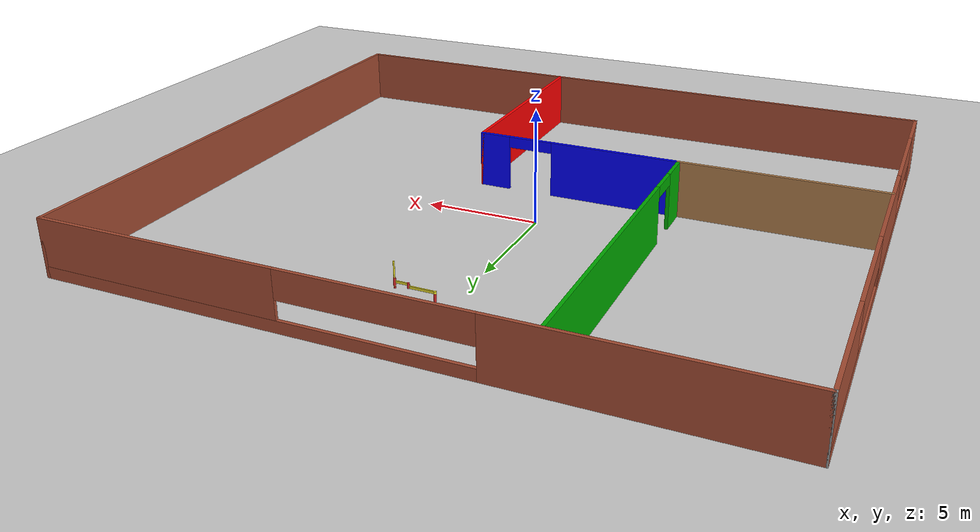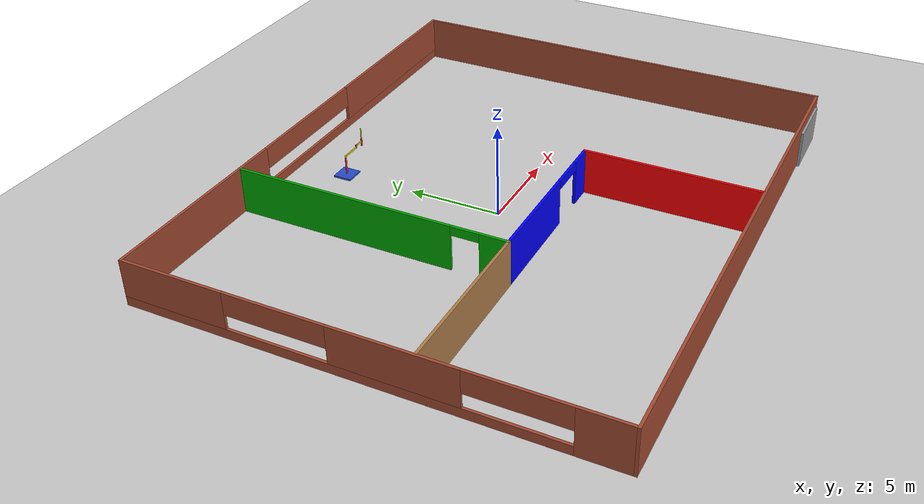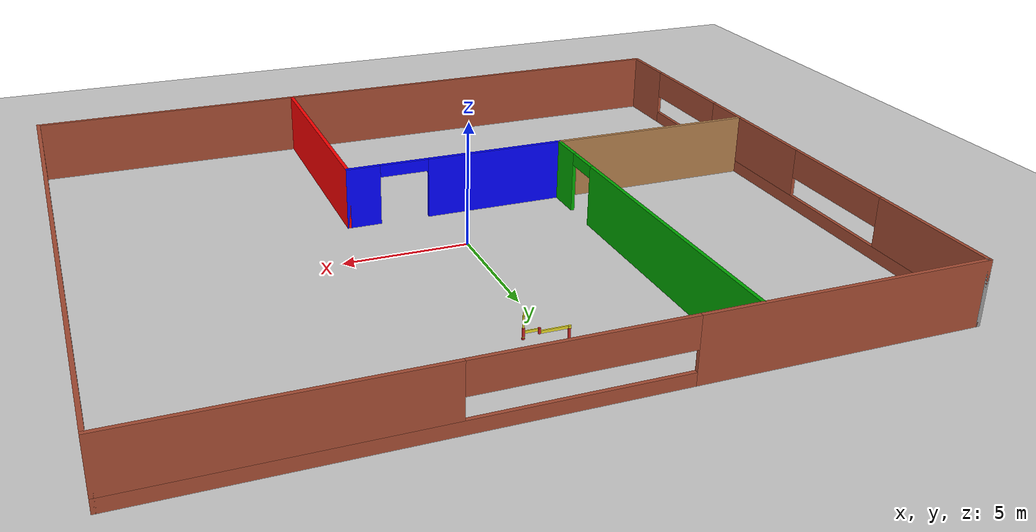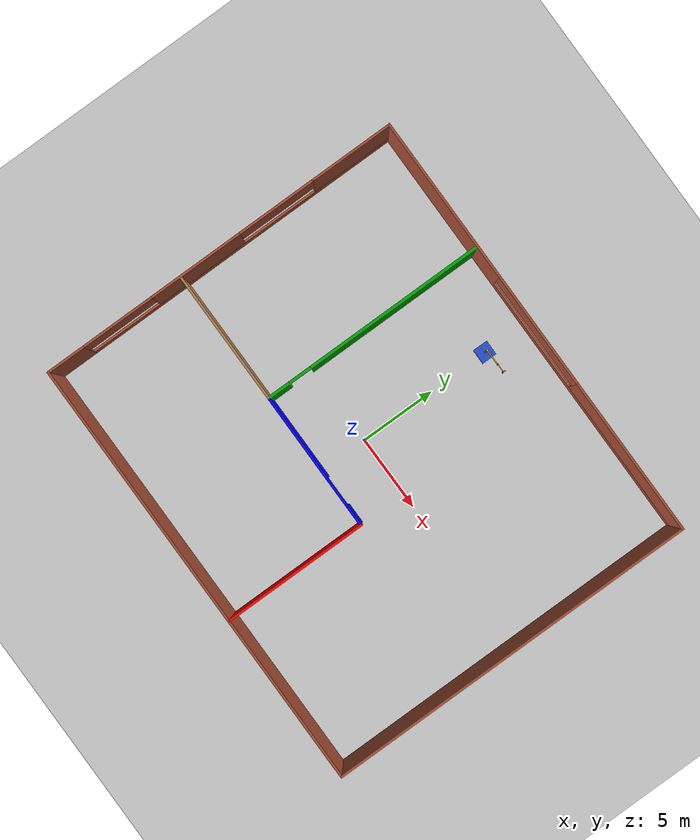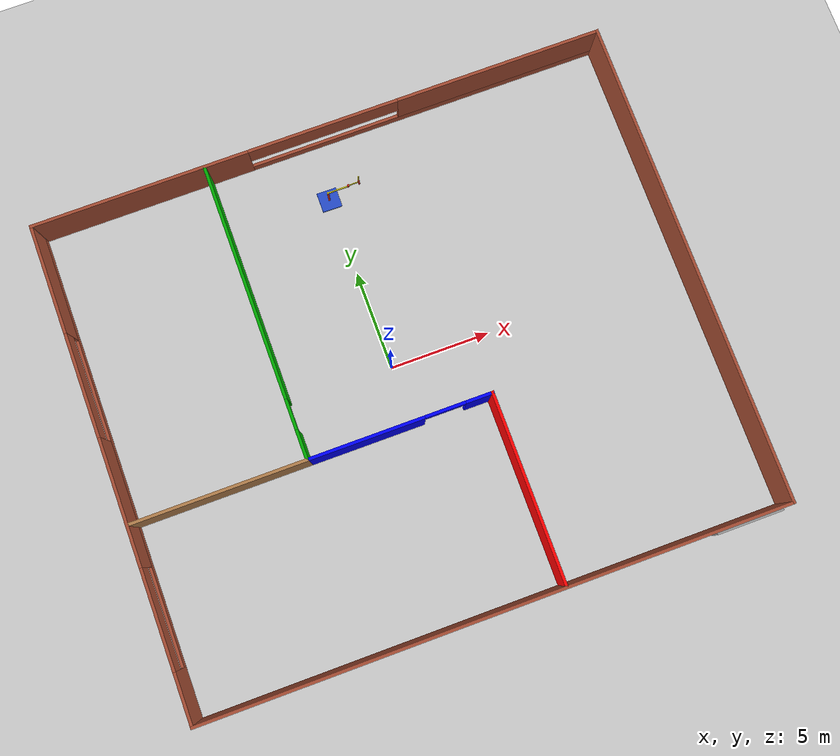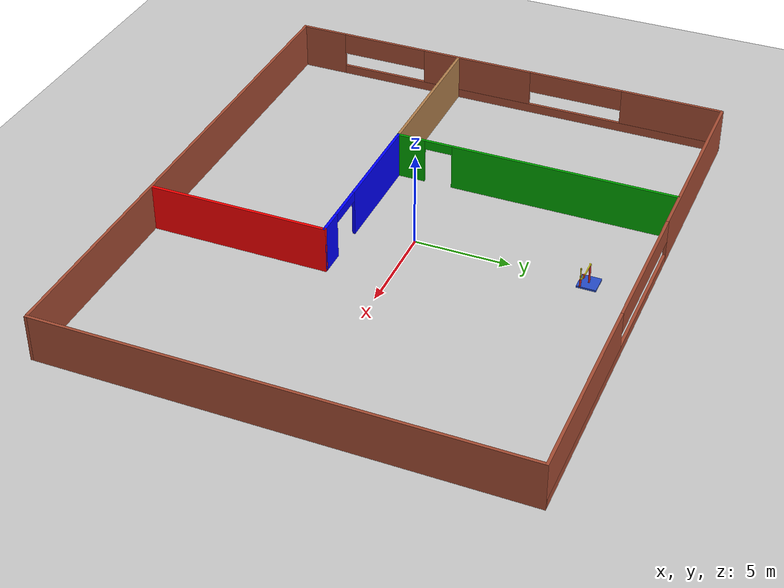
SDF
<sdf version="1.6">
 <world name="default">
  <model name="ground_plane">
   <static>1</static>
   <link name="link">
    <collision name="collision">
     <geometry><plane><normal>0 0 1</normal><size>100 100</size></plane></geometry>
     <surface><friction><ode><mu>100</mu><mu2>50</mu2></ode></friction></surface>
    </collision>
    <visual name="visual">
     <cast_shadows>0</cast_shadows>
     <geometry><plane><normal>0 0 1</normal><size>100 100</size></plane></geometry>
     <material>
      <script><uri>file://media/materials/scripts/gazebo.material</uri><name>Gazebo/Grey</name></script>
     </material>
    </visual>
   </link>
  </model>
  <model name="arpeggio_apartment">
   <pose>0.559 -0.3298 0 0 -0 0</pose>
   <link name="Door_0">
    <collision name="Door_0_Collision">
     <geometry><box><size>3.30558 0.2 2</size></box></geometry>
     <pose>0 0 1 0 -0 0</pose>
    </collision>
    <visual name="Door_0_Visual">
     <pose>0 0 1 0 -0 0</pose>
     <geometry><box><size>3.30558 0.2 2</size></box></geometry>
     <material>
      <script><uri>file://media/materials/scripts/gazebo.material</uri><name>Gazebo/Grey</name></script>
     </material>
    </visual>
    <pose>12.3774 -12.2816 0 0 -0 0</pose>
   </link>
   <link name="Wall_0">
    <pose>0 12.175 0 0 -0 0</pose>
    <visual name="Wall_0_Visual_0">
     <pose>-9.03319 0 1.25 0 -0 0</pose>
     <geometry><box><size>10.9336 0.15 2.5</size></box></geometry>
     <material>
      <script><uri>file://media/materials/scripts/gazebo.material</uri><name>Gazebo/Bricks</name></script>
      <ambient>1 1 1 1</ambient>
     </material>
     <meta><layer>0</layer></meta>
    </visual>
    <collision name="Wall_0_Collision_0">
     <geometry><box><size>10.9336 0.15 2.5</size></box></geometry>
     <pose>-9.03319 0 1.25 0 -0 0</pose>
    </collision>
    <visual name="Wall_0_Visual_1">
     <pose>5.46681 0 0.25 0 -0 0</pose>
     <geometry><box><size>18.0664 0.15 0.5</size></box></geometry>
     <material>
      <script><uri>file://media/materials/scripts/gazebo.material</uri><name>Gazebo/Bricks</name></script>
      <ambient>1 1 1 1</ambient>
     </material>
     <meta><layer>0</layer></meta>
    </visual>
    <collision name="Wall_0_Collision_1">
     <geometry><box><size>18.0664 0.15 0.5</size></box></geometry>
     <pose>5.46681 0 0.25 0 -0 0</pose>
    </collision>
    <visual name="Wall_0_Visual_2">
     <pose>9.27494 0 1.5 0 -0 0</pose>
     <geometry><box><size>10.4501 0.15 2</size></box></geometry>
     <material>
      <script><uri>file://media/materials/scripts/gazebo.material</uri><name>Gazebo/Bricks</name></script>
      <ambient>1 1 1 1</ambient>
     </material>
     <meta><layer>0</layer></meta>
    </visual>
    <collision name="Wall_0_Collision_2">
     <geometry><box><size>10.4501 0.15 2</size></box></geometry>
     <pose>9.27494 0 1.5 0 -0 0</pose>
    </collision>
    <visual name="Wall_0_Visual_3">
     <pose>0.241756 0 1.9 0 -0 0</pose>
     <geometry><box><size>7.61627 0.15 1.2</size></box></geometry>
     <material>
      <script><uri>file://media/materials/scripts/gazebo.material</uri><name>Gazebo/Bricks</name></script>
      <ambient>1 1 1 1</ambient>
     </material>
     <meta><layer>0</layer></meta>
    </visual>
    <collision name="Wall_0_Collision_3">
     <geometry><box><size>7.61627 0.15 1.2</size></box></geometry>
     <pose>0.241756 0 1.9 0 -0 0</pose>
    </collision>
   </link>
   <link name="Wall_1">
    <collision name="Wall_1_Collision">
     <geometry><box><size>24.5 0.15 2.5</size></box></geometry>
     <pose>0 0 1.25 0 -0 0</pose>
    </collision>
    <visual name="Wall_1_Visual">
     <pose>0 0 1.25 0 -0 0</pose>
     <geometry><box><size>24.5 0.15 2.5</size></box></geometry>
     <material>
      <script><uri>file://media/materials/scripts/gazebo.material</uri><name>Gazebo/Bricks</name></script>
      <ambient>1 1 1 1</ambient>
     </material>
     <meta><layer>0</layer></meta>
    </visual>
    <pose>14.425 0 0 0 0 -1.5708</pose>
   </link>
   <link name="Wall_10">
    <collision name="Wall_10_Collision">
     <geometry><box><size>9.5 0.15 2.5</size></box></geometry>
     <pose>0 0 1.25 0 -0 0</pose>
    </collision>
    <visual name="Wall_10_Visual">
     <pose>0 0 1.25 0 -0 0</pose>
     <geometry><box><size>9.5 0.15 2.5</size></box></geometry>
     <material>
      <script><uri>file://media/materials/scripts/gazebo.material</uri><name>Gazebo/Grey</name></script>
      <ambient>1 0 0 1</ambient>
     </material>
     <meta><layer>0</layer></meta>
    </visual>
    <pose>3.32898 -7.42036 0 0 0 -1.5708</pose>
   </link>
   <link name="Wall_2">
    <collision name="Wall_2_Collision">
     <geometry><box><size>29 0.15 2.5</size></box></geometry>
     <pose>0 0 1.25 0 -0 0</pose>
    </collision>
    <visual name="Wall_2_Visual">
     <pose>0 0 1.25 0 -0 0</pose>
     <geometry><box><size>29 0.15 2.5</size></box></geometry>
     <material>
      <script><uri>file://media/materials/scripts/gazebo.material</uri><name>Gazebo/Bricks</name></script>
      <ambient>1 1 1 1</ambient>
     </material>
     <meta><layer>0</layer></meta>
    </visual>
    <pose>0 -12.175 0 0 -0 3.14159</pose>
   </link>
   <link name="Wall_3">
    <pose>-14.425 0 0 0 -0 1.5708</pose>
    <visual name="Wall_3_Visual_0">
     <pose>-10.9479 0 1.25 0 -0 0</pose>
     <geometry><box><size>2.60411 0.15 2.5</size></box></geometry>
     <material>
      <script><uri>file://media/materials/scripts/gazebo.material</uri><name>Gazebo/Bricks</name></script>
      <ambient>1 1 1 1</ambient>
     </material>
     <meta><layer>0</layer></meta>
    </visual>
    <collision name="Wall_3_Collision_0">
     <geometry><box><size>2.60411 0.15 2.5</size></box></geometry>
     <pose>-10.9479 0 1.25 0 -0 0</pose>
    </collision>
    <visual name="Wall_3_Visual_1">
     <pose>1.30205 0 0.25 0 -0 0</pose>
     <geometry><box><size>21.8959 0.15 0.5</size></box></geometry>
     <material>
      <script><uri>file://media/materials/scripts/gazebo.material</uri><name>Gazebo/Bricks</name></script>
      <ambient>1 1 1 1</ambient>
     </material>
     <meta><layer>0</layer></meta>
    </visual>
    <collision name="Wall_3_Collision_1">
     <geometry><box><size>21.8959 0.15 0.5</size></box></geometry>
     <pose>1.30205 0 0.25 0 -0 0</pose>
    </collision>
    <visual name="Wall_3_Visual_2">
     <pose>-1.64743 0 1.5 0 -0 0</pose>
     <geometry><box><size>6.277 0.15 2</size></box></geometry>
     <material>
      <script><uri>file://media/materials/scripts/gazebo.material</uri><name>Gazebo/Bricks</name></script>
      <ambient>1 1 1 1</ambient>
     </material>
     <meta><layer>0</layer></meta>
    </visual>
    <collision name="Wall_3_Collision_2">
     <geometry><box><size>6.277 0.15 2</size></box></geometry>
     <pose>-1.64743 0 1.5 0 -0 0</pose>
    </collision>
    <visual name="Wall_3_Visual_3">
     <pose>9.46813 0 1.5 0 -0 0</pose>
     <geometry><box><size>5.56374 0.15 2</size></box></geometry>
     <material>
      <script><uri>file://media/materials/scripts/gazebo.material</uri><name>Gazebo/Bricks</name></script>
      <ambient>1 1 1 1</ambient>
     </material>
     <meta><layer>0</layer></meta>
    </visual>
    <collision name="Wall_3_Collision_3">
     <geometry><box><size>5.56374 0.15 2</size></box></geometry>
     <pose>9.46813 0 1.5 0 -0 0</pose>
    </collision>
    <visual name="Wall_3_Visual_4">
     <pose>-7.21591 0 1.9 0 -0 0</pose>
     <geometry><box><size>4.85996 0.15 1.2</size></box></geometry>
     <material>
      <script><uri>file://media/materials/scripts/gazebo.material</uri><name>Gazebo/Bricks</name></script>
      <ambient>1 1 1 1</ambient>
     </material>
     <meta><layer>0</layer></meta>
    </visual>
    <collision name="Wall_3_Collision_4">
     <geometry><box><size>4.85996 0.15 1.2</size></box></geometry>
     <pose>-7.21591 0 1.9 0 -0 0</pose>
    </collision>
    <visual name="Wall_3_Visual_5">
     <pose>4.08866 0 1.9 0 -0 0</pose>
     <geometry><box><size>5.19519 0.15 1.2</size></box></geometry>
     <material>
      <script><uri>file://media/materials/scripts/gazebo.material</uri><name>Gazebo/Bricks</name></script>
      <ambient>1 1 1 1</ambient>
     </material>
     <meta><layer>0</layer></meta>
    </visual>
    <collision name="Wall_3_Collision_5">
     <geometry><box><size>5.19519 0.15 1.2</size></box></geometry>
     <pose>4.08866 0 1.9 0 -0 0</pose>
    </collision>
   </link>
   <link name="Wall_4">
    <collision name="Wall_4_Collision">
     <geometry><box><size>0.16 0.15 2.5</size></box></geometry>
     <pose>0 0 1.25 0 -0 0</pose>
    </collision>
    <visual name="Wall_4_Visual">
     <pose>0 0 1.25 0 -0 0</pose>
     <geometry><box><size>0.16 0.15 2.5</size></box></geometry>
     <material>
      <script><uri>file://media/materials/scripts/gazebo.material</uri><name>Gazebo/Grey</name></script>
      <ambient>1 1 1 1</ambient>
     </material>
     <meta><layer>0</layer></meta>
    </visual>
    <pose>-14.42 12.175 0 0 -0 0</pose>
   </link>
   <link name="Wall_6">
    <pose>-5.77102 4.67964 0 0 0 -1.5708</pose>
    <visual name="Wall_6_Visual_0">
     <pose>-1.53146 0 1.25 0 -0 0</pose>
     <geometry><box><size>11.9371 0.15 2.5</size></box></geometry>
     <material>
      <script><uri>file://media/materials/scripts/gazebo.material</uri><name>Gazebo/Grey</name></script>
      <ambient>0 0.666667 0 1</ambient>
     </material>
     <meta><layer>0</layer></meta>
    </visual>
    <collision name="Wall_6_Collision_0">
     <geometry><box><size>11.9371 0.15 2.5</size></box></geometry>
     <pose>-1.53146 0 1.25 0 -0 0</pose>
    </collision>
    <visual name="Wall_6_Visual_1">
     <pose>6.71923 0 1.25 0 -0 0</pose>
     <geometry><box><size>1.56153 0.15 2.5</size></box></geometry>
     <material>
      <script><uri>file://media/materials/scripts/gazebo.material</uri><name>Gazebo/Grey</name></script>
      <ambient>0 0.666667 0 1</ambient>
     </material>
     <meta><layer>0</layer></meta>
    </visual>
    <collision name="Wall_6_Collision_1">
     <geometry><box><size>1.56153 0.15 2.5</size></box></geometry>
     <pose>6.71923 0 1.25 0 -0 0</pose>
    </collision>
    <visual name="Wall_6_Visual_2">
     <pose>5.18777 0 2.25 0 -0 0</pose>
     <geometry><box><size>1.5014 0.15 0.5</size></box></geometry>
     <material>
      <script><uri>file://media/materials/scripts/gazebo.material</uri><name>Gazebo/Grey</name></script>
      <ambient>0 0.666667 0 1</ambient>
     </material>
     <meta><layer>0</layer></meta>
    </visual>
    <collision name="Wall_6_Collision_2">
     <geometry><box><size>1.5014 0.15 0.5</size></box></geometry>
     <pose>5.18777 0 2.25 0 -0 0</pose>
    </collision>
   </link>
   <link name="Wall_7">
    <collision name="Wall_7_Collision">
     <geometry><box><size>8.75 0.15 2.5</size></box></geometry>
     <pose>0 0 1.25 0 -0 0</pose>
    </collision>
    <visual name="Wall_7_Visual">
     <pose>0 0 1.25 0 -0 0</pose>
     <geometry><box><size>8.75 0.15 2.5</size></box></geometry>
     <material>
      <script><uri>file://media/materials/scripts/gazebo.material</uri><name>Gazebo/Wood</name></script>
      <ambient>1 1 1 1</ambient>
     </material>
     <meta><layer>0</layer></meta>
    </visual>
    <pose>-10.071 -2.74536 0 0 -0 3.14159</pose>
   </link>
   <link name="Wall_9">
    <pose>-1.22102 -2.74536 0 0 -0 0</pose>
    <visual name="Wall_9_Visual_0">
     <pose>-1.70599 0 1.25 0 -0 0</pose>
     <geometry><box><size>5.83802 0.15 2.5</size></box></geometry>
     <material>
      <script><uri>file://media/materials/scripts/gazebo.material</uri><name>Gazebo/Grey</name></script>
      <ambient>0 0 1 1</ambient>
     </material>
     <meta><layer>0</layer></meta>
    </visual>
    <collision name="Wall_9_Collision_0">
     <geometry><box><size>5.83802 0.15 2.5</size></box></geometry>
     <pose>-1.70599 0 1.25 0 -0 0</pose>
    </collision>
    <visual name="Wall_9_Visual_1">
     <pose>3.92415 0 1.25 0 -0 0</pose>
     <geometry><box><size>1.40171 0.15 2.5</size></box></geometry>
     <material>
      <script><uri>file://media/materials/scripts/gazebo.material</uri><name>Gazebo/Grey</name></script>
      <ambient>0 0 1 1</ambient>
     </material>
     <meta><layer>0</layer></meta>
    </visual>
    <collision name="Wall_9_Collision_1">
     <geometry><box><size>1.40171 0.15 2.5</size></box></geometry>
     <pose>3.92415 0 1.25 0 -0 0</pose>
    </collision>
    <visual name="Wall_9_Visual_2">
     <pose>2.21816 0 2.25 0 -0 0</pose>
     <geometry><box><size>2.01027 0.15 0.5</size></box></geometry>
     <material>
      <script><uri>file://media/materials/scripts/gazebo.material</uri><name>Gazebo/Grey</name></script>
      <ambient>0 0 1 1</ambient>
     </material>
     <meta><layer>0</layer></meta>
    </visual>
    <collision name="Wall_9_Collision_2">
     <geometry><box><size>2.01027 0.15 0.5</size></box></geometry>
     <pose>2.21816 0 2.25 0 -0 0</pose>
    </collision>
   </link>
   <static>1</static>
  </model>
  <model name="simple_arm">
   <link name="arm_base">
    <inertial>
     <pose>0 0 0.00099 0 -0 0</pose>
     <inertia><ixx>1.11</ixx><ixy>0</ixy><ixz>0</ixz><iyy>100.11</iyy><iyz>0</iyz><izz>1.01</izz></inertia>
     <mass>101</mass>
    </inertial>
    <collision name="arm_base_geom">
     <pose>0 0 0.05 0 -0 0</pose>
     <geometry><box><size>1 1 0.1</size></box></geometry>
    </collision>
    <visual name="arm_base_geom_visual">
     <pose>0 0 0.05 0 -0 0</pose>
     <geometry><box><size>1 1 0.1</size></box></geometry>
     <material>
      <script><uri>file://media/materials/scripts/gazebo.material</uri><name>Gazebo/Blue</name></script>
     </material>
    </visual>
    <collision name="arm_base_geom_arm_trunk">
     <pose>0 0 0.6 0 -0 0</pose>
     <geometry><cylinder><radius>0.05</radius><length>1</length></cylinder></geometry>
    </collision>
    <visual name="arm_base_geom_arm_trunk_visual">
     <pose>0 0 0.6 0 -0 0</pose>
     <geometry><cylinder><radius>0.05</radius><length>1</length></cylinder></geometry>
     <material>
      <script><uri>file://media/materials/scripts/gazebo.material</uri><name>Gazebo/Red</name></script>
     </material>
    </visual>
   </link>
   <link name="arm_shoulder_pan">
    <pose>0 0 1.1 0 -0 0</pose>
    <inertial>
     <pose>0.045455 0 0 0 -0 0</pose>
     <inertia><ixx>0.011</ixx><ixy>0</ixy><ixz>0</ixz><iyy>0.0225</iyy><iyz>0</iyz><izz>0.0135</izz></inertia>
     <mass>1.1</mass>
    </inertial>
    <collision name="arm_shoulder_pan_geom">
     <pose>0 0 0.05 0 -0 0</pose>
     <geometry><cylinder><radius>0.05</radius><length>0.1</length></cylinder></geometry>
    </collision>
    <visual name="arm_shoulder_pan_geom_visual">
     <pose>0 0 0.05 0 -0 0</pose>
     <geometry><cylinder><radius>0.05</radius><length>0.1</length></cylinder></geometry>
     <material>
      <script><uri>file://media/materials/scripts/gazebo.material</uri><name>Gazebo/Yellow</name></script>
     </material>
    </visual>
    <collision name="arm_shoulder_pan_geom_arm_shoulder">
     <pose>0.55 0 0.05 0 -0 0</pose>
     <geometry><box><size>1 0.05 0.1</size></box></geometry>
    </collision>
    <visual name="arm_shoulder_pan_geom_arm_shoulder_visual">
     <pose>0.55 0 0.05 0 -0 0</pose>
     <geometry><box><size>1 0.05 0.1</size></box></geometry>
     <material>
      <script><uri>file://media/materials/scripts/gazebo.material</uri><name>Gazebo/Yellow</name></script>
     </material>
    </visual>
   </link>
   <link name="arm_elbow_pan">
    <pose>1.05 0 1.1 0 -0 0</pose>
    <inertial>
     <pose>0.0875 0 0.083333 0 -0 0</pose>
     <inertia>
      <ixx>0.031</ixx>
      <ixy>0</ixy>
      <ixz>0.005</ixz>
      <iyy>0.07275</iyy>
      <iyz>0</iyz>
      <izz>0.04475</izz>
     </inertia>
     <mass>1.2</mass>
    </inertial>
    <collision name="arm_elbow_pan_geom">
     <pose>0 0 0.1 0 -0 0</pose>
     <geometry><cylinder><radius>0.05</radius><length>0.2</length></cylinder></geometry>
    </collision>
    <visual name="arm_elbow_pan_geom_visual">
     <pose>0 0 0.1 0 -0 0</pose>
     <geometry><cylinder><radius>0.05</radius><length>0.2</length></cylinder></geometry>
     <material>
      <script><uri>file://media/materials/scripts/gazebo.material</uri><name>Gazebo/Red</name></script>
     </material>
    </visual>
    <collision name="arm_elbow_pan_geom_arm_elbow">
     <pose>0.3 0 0.15 0 -0 0</pose>
     <geometry><box><size>0.5 0.03 0.1</size></box></geometry>
    </collision>
    <visual name="arm_elbow_pan_geom_arm_elbow_visual">
     <pose>0.3 0 0.15 0 -0 0</pose>
     <geometry><box><size>0.5 0.03 0.1</size></box></geometry>
     <material>
      <script><uri>file://media/materials/scripts/gazebo.material</uri><name>Gazebo/Yellow</name></script>
     </material>
    </visual>
    <collision name="arm_elbow_pan_geom_arm_wrist">
     <pose>0.55 0 0.15 0 -0 0</pose>
     <geometry><cylinder><radius>0.05</radius><length>0.3</length></cylinder></geometry>
    </collision>
    <visual name="arm_elbow_pan_geom_arm_wrist_visual">
     <pose>0.55 0 0.15 0 -0 0</pose>
     <geometry><cylinder><radius>0.05</radius><length>0.3</length></cylinder></geometry>
     <material>
      <script><uri>file://media/materials/scripts/gazebo.material</uri><name>Gazebo/Red</name></script>
     </material>
    </visual>
   </link>
   <link name="arm_wrist_lift">
    <pose>1.6 0 1.05 0 -0 0</pose>
    <inertial>
     <inertia><ixx>0.01</ixx><ixy>0</ixy><ixz>0</ixz><iyy>0.01</iyy><iyz>0</iyz><izz>0.001</izz></inertia>
     <mass>0.1</mass>
    </inertial>
    <collision name="arm_wrist_lift_geom">
     <pose>0 0 0.5 0 -0 0</pose>
     <geometry><cylinder><radius>0.03</radius><length>1</length></cylinder></geometry>
    </collision>
    <visual name="arm_wrist_lift_geom_visual">
     <pose>0 0 0.5 0 -0 0</pose>
     <geometry><cylinder><radius>0.03</radius><length>1</length></cylinder></geometry>
     <material>
      <script><uri>file://media/materials/scripts/gazebo.material</uri><name>Gazebo/Yellow</name></script>
     </material>
    </visual>
   </link>
   <link name="arm_wrist_roll">
    <pose>1.6 0 1 0 -0 0</pose>
    <inertial>
     <inertia><ixx>0.01</ixx><ixy>0</ixy><ixz>0</ixz><iyy>0.01</iyy><iyz>0</iyz><izz>0.001</izz></inertia>
     <mass>0.1</mass>
    </inertial>
    <collision name="arm_wrist_roll_geom">
     <pose>0 0 0.025 0 -0 0</pose>
     <geometry><cylinder><radius>0.05</radius><length>0.05</length></cylinder></geometry>
    </collision>
    <visual name="arm_wrist_roll_geom_visual">
     <pose>0 0 0.025 0 -0 0</pose>
     <geometry><cylinder><radius>0.05</radius><length>0.05</length></cylinder></geometry>
     <material>
      <script><uri>file://media/materials/scripts/gazebo.material</uri><name>Gazebo/Red</name></script>
     </material>
    </visual>
   </link>
   <joint name="arm_shoulder_pan_joint" type="revolute">
    <parent>arm_base</parent>
    <child>arm_shoulder_pan</child>
    <axis>
     <dynamics>
      <damping>1</damping>
      <friction>0</friction>
      <spring_reference>0</spring_reference>
      <spring_stiffness>0</spring_stiffness>
     </dynamics>
     <xyz>0 0 1</xyz>
     <use_parent_model_frame>1</use_parent_model_frame>
     <limit><lower>-1e+16</lower><upper>1e+16</upper></limit>
    </axis>
   </joint>
   <joint name="arm_elbow_pan_joint" type="revolute">
    <parent>arm_shoulder_pan</parent>
    <child>arm_elbow_pan</child>
    <axis>
     <dynamics>
      <damping>1</damping>
      <friction>0</friction>
      <spring_reference>0</spring_reference>
      <spring_stiffness>0</spring_stiffness>
     </dynamics>
     <xyz>0 0 1</xyz>
     <use_parent_model_frame>1</use_parent_model_frame>
     <limit><lower>-1e+16</lower><upper>1e+16</upper></limit>
    </axis>
   </joint>
   <joint name="arm_wrist_lift_joint" type="prismatic">
    <parent>arm_elbow_pan</parent>
    <child>arm_wrist_lift</child>
    <axis>
     <dynamics>
      <damping>1</damping>
      <friction>0</friction>
      <spring_reference>0</spring_reference>
      <spring_stiffness>0</spring_stiffness>
     </dynamics>
     <limit><lower>-0.8</lower><upper>0.1</upper></limit>
     <xyz>0 0 1</xyz>
     <use_parent_model_frame>1</use_parent_model_frame>
    </axis>
   </joint>
   <joint name="arm_wrist_roll_joint" type="revolute">
    <parent>arm_wrist_lift</parent>
    <child>arm_wrist_roll</child>
    <axis>
     <dynamics>
      <damping>1</damping>
      <friction>0</friction>
      <spring_reference>0</spring_reference>
      <spring_stiffness>0</spring_stiffness>
     </dynamics>
     <limit><lower>-2.99999</lower><upper>2.99999</upper></limit>
     <xyz>0 0 1</xyz>
     <use_parent_model_frame>1</use_parent_model_frame>
    </axis>
   </joint>
   <pose>-0.023252 9.0132 0 0 0 -0.004184</pose>
  </model>
 </world>
</sdf>
